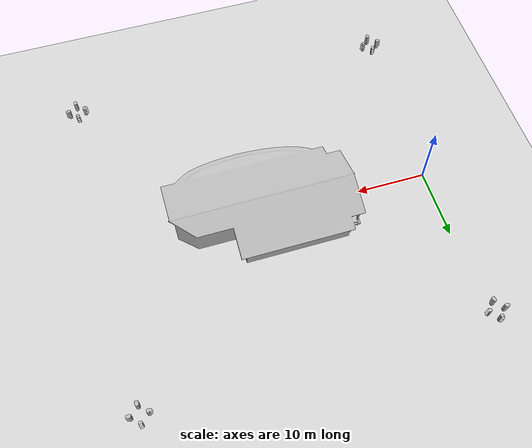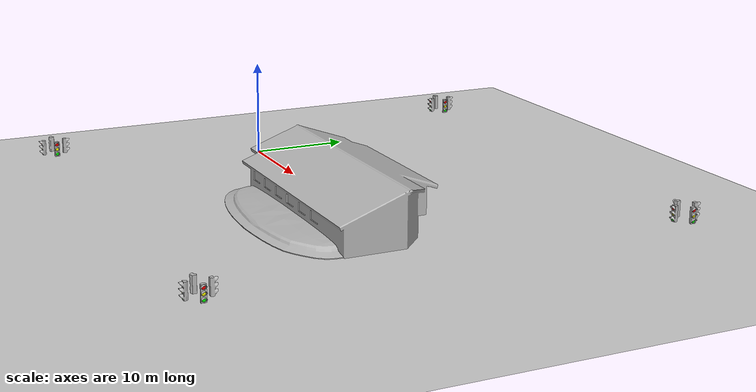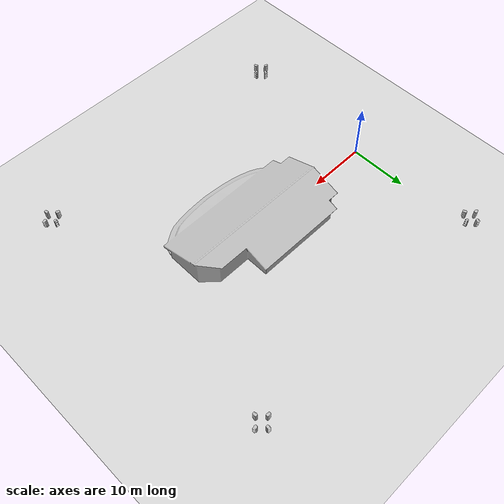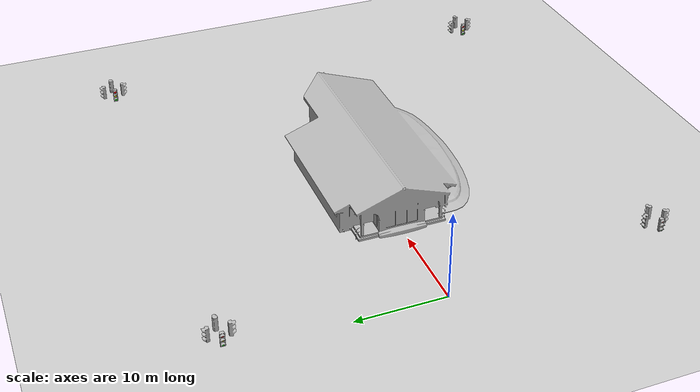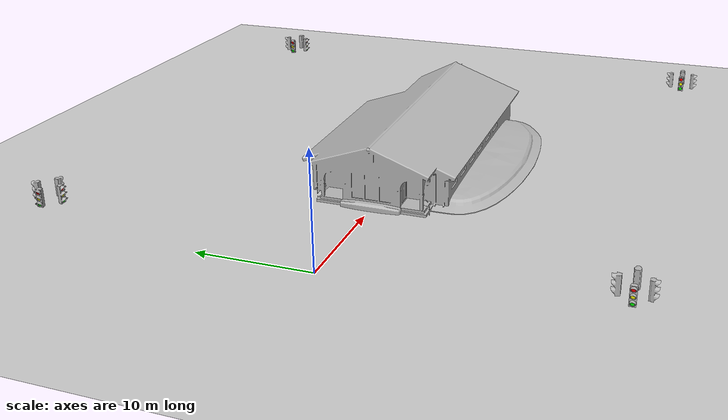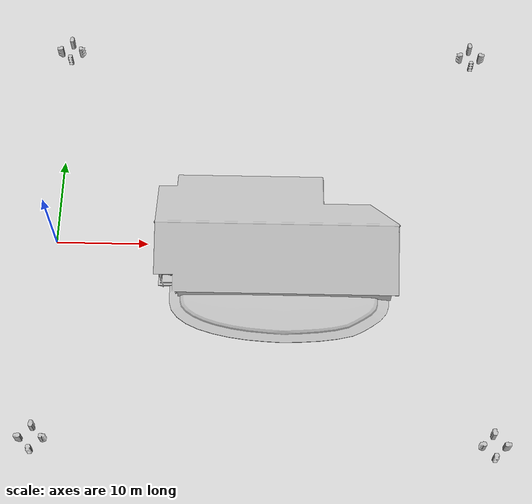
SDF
<sdf version="1.10">
 <world name="car-world">
  <scene><ambient>0.3 0.3 0.3 0</ambient><background>0.1 0.2 0.3 0</background><grid>false</grid></scene>
  <physics name="1ms" type="ignored">
   <max_step_size>0.001</max_step_size>
   <real_time_factor>1.0</real_time_factor>
  </physics>
  <plugin filename="gz-sim-physics-system" name="gz::sim::systems::Physics"/>
  <plugin filename="gz-sim-user-commands-system" name="gz::sim::systems::UserCommands"/>
  <plugin filename="gz-sim-scene-broadcaster-system" name="gz::sim::systems::SceneBroadcaster"/>
  <plugin filename="gz-sim-sensors-system" name="gz::sim::systems::Sensors">
   <render_engine>ogre2</render_engine>
  </plugin>
  <light type="directional" name="sun">
   <pose>40 0 10 0 0 0</pose>
   <diffuse>0.8 0.8 0.8 1</diffuse>
   <specular>0.2 0.2 0.2 1</specular>
   <attenuation>
    <range>1000</range>
    <constant>0.9</constant>
    <linear>0.01</linear>
    <quadratic>0.001</quadratic>
   </attenuation>
   <direction>-0.5 0.1 -0.9</direction>
  </light>
  <include><uri>model://models/stoplights</uri></include>
  <include><uri>model://models/ground</uri></include>
  <include><pose>25 0 0 0 0 0</pose><uri>model://models/office</uri></include>
 </world>
</sdf>

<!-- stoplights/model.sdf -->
<sdf version="1.6">
  <model name="stoplights">
    <static>true</static>

    <!-- stoplights on the intersection of the north street and the west street.-->

    <include>
      <name>light_nw_n</name>
      <pose>47 23 4 0 0 1.57</pose>
      <uri>model://models/stoplights/stoplight_a</uri>
    </include>

    <include>
      <name>light_nw_s</name>
      <pose>45 23 4 0 0 -1.57</pose>
      <uri>model://models/stoplights/stoplight_a</uri>
    </include>

    <include>
      <name>light_nw_w</name>
      <pose>46 24 4 0 0 3.14</pose>
      <uri>model://models/stoplights/stoplight_b</uri>
    </include>

    <include>
      <name>light_nw_e</name>
      <pose>46 22 4 0 0 0</pose>
      <uri>model://models/stoplights/stoplight_b</uri>
    </include>

    <!-- stoplights on the intersection of the north street and the east street.-->

    <include>
      <name>light_ne_n</name>
      <pose>47 -23 4 0 0 1.57</pose>
      <uri>model://models/stoplights/stoplight_b</uri>
    </include>

    <include>
      <name>light_ne_s</name>
      <pose>45 -23 4 0 0 -1.57</pose>
      <uri>model://models/stoplights/stoplight_b</uri>
    </include>

    <include>
      <name>light_ne_w</name>
      <pose>46 -22 4 0 0 3.14</pose>
      <uri>model://models/stoplights/stoplight_a</uri>
    </include>

    <include>
      <name>light_ne_e</name>
      <pose>46 -24 4 0 0 0</pose>
      <uri>model://models/stoplights/stoplight_a</uri>
    </include>

    <!-- stoplights on the intersection of the south street and the west street.-->

    <include>
      <name>light_sw_n</name>
      <pose>1 23 4 0 0 1.57</pose>
      <uri>model://models/stoplights/stoplight_b</uri>
    </include>

    <include>
      <name>light_sw_s</name>
      <pose>-1 23 4 0 0 -1.57</pose>
      <uri>model://models/stoplights/stoplight_b</uri>
    </include>

    <include>
      <name>light_sw_w</name>
      <pose>0 24 4 0 0 3.14</pose>
      <uri>model://models/stoplights/stoplight_a</uri>
    </include>

    <include>
      <name>light_sw_e</name>
      <pose>0 22 4 0 0 0</pose>
      <uri>model://models/stoplights/stoplight_a</uri>
    </include>

    <!-- stoplights on the intersection of the south street and the east street.-->

    <include>
      <name>light_se_n</name>
      <pose>1 -23 4 0 0 1.57</pose>
      <uri>model://models/stoplights/stoplight_a</uri>
    </include>

    <include>
      <name>light_se_s</name>
      <pose>-1 -23 4 0 0 -1.57</pose>
      <uri>model://models/stoplights/stoplight_a</uri>
    </include>

    <include>
      <name>light_se_w</name>
      <pose>0 -22 4 0 0 3.14</pose>
      <uri>model://models/stoplights/stoplight_b</uri>
    </include>

    <include>
      <name>light_se_e</name>
      <pose>0 -24 4 0 0 0</pose>
      <uri>model://models/stoplights/stoplight_b</uri>
    </include>

  </model>

</sdf>

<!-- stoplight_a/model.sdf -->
<sdf version="1.6">
  <model name="stoplight_a">

    <static>true</static>

    <link name="link">

      <collision name="collision">
        <geometry>
          <mesh>
            <uri>model://models/stoplights/stoplight_a/meshes/stoplight.obj</uri>
            <scale>0.02 0.02 0.02</scale>
          </mesh>
        </geometry>
      </collision>

      <visual name="frame">
        <geometry>
          <mesh>
            <uri>model://models/stoplights/stoplight_a/meshes/stoplight.obj</uri>
            <scale>0.02 0.02 0.02</scale>
          </mesh>
        </geometry>
      </visual>

      <visual name="red_a">
        <pose>-0.002246 -0.164502 -0.295028 0 0 0</pose>
        <geometry>
          <sphere>
            <radius>0.2024</radius>
          </sphere>
        </geometry>
        <material>
          <script>
            <uri>model://models/stoplights/stoplight_a/materials/scripts/</uri>
            <uri>model://models/stoplights/stoplight_a/materials/textures/</uri>
            <name>StopLight/Light</name>
          </script>
          <ambient>1 0 0 1</ambient>
          <specular>1 0 0 1</specular>
          <!-- Turn a light on by uncommenting emissive -->
        </material>
      </visual>

      <visual name="yellow_a">
        <pose>-0.002246 -0.164502 -0.804 0 0 0</pose>
        <geometry>
          <sphere>
            <radius>0.2024</radius>
          </sphere>
        </geometry>
        <material>
          <script>
            <uri>model://models/stoplights/stoplight_a/materials/scripts/</uri>
            <uri>model://models/stoplights/stoplight_a/materials/textures/</uri>
            <name>StopLight/Light</name>
          </script>
          <ambient>1 1 0 1</ambient>
          <specular>1 1 0 1</specular>
        </material>
      </visual>

      <visual name="green_a">
        <pose>-0.002246 -0.164502 -1.31 0 0 0</pose>
        <geometry>
          <sphere>
            <radius>0.2024</radius>
          </sphere>
        </geometry>
        <material>
          <script>
            <uri>model://models/stoplights/stoplight_a/materials/scripts/</uri>
            <uri>model://models/stoplights/stoplight_a/materials/textures/</uri>
            <name>StopLight/Light</name>
          </script>
          <ambient>0 1 0 1</ambient>
          <specular>0 1 0 1</specular>
        </material>
      </visual>

    </link>
  </model>
</sdf>

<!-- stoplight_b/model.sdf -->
<sdf version="1.6">
  <model name="stoplight_b">

    <static>true</static>

    <link name="link">

      <collision name="collision">
        <geometry>
          <mesh>
            <uri>model://models/stoplights/stoplight_b/meshes/stoplight.obj</uri>
            <scale>0.02 0.02 0.02</scale>
          </mesh>
        </geometry>
      </collision>

      <visual name="frame">
        <geometry>
          <mesh>
            <uri>model://models/stoplights/stoplight_b/meshes/stoplight.obj</uri>
            <scale>0.02 0.02 0.02</scale>
          </mesh>
        </geometry>
      </visual>

      <visual name="red_b">
        <pose>-0.002246 -0.164502 -0.295028 0 0 0</pose>
        <geometry>
          <sphere>
            <radius>0.2024</radius>
          </sphere>
        </geometry>
        <material>
          <script>
            <uri>model://models/stoplights/stoplight_b/materials/scripts/</uri>
            <uri>model://models/stoplights/stoplight_b/materials/textures/</uri>
            <name>StopLight/Light</name>
          </script>
          <ambient>1 0 0 1</ambient>
          <specular>1 0 0 1</specular>
          <!-- Turn a light on by uncommenting emissive -->
        </material>
      </visual>

      <visual name="yellow_b">
        <pose>-0.002246 -0.164502 -0.804 0 0 0</pose>
        <geometry>
          <sphere>
            <radius>0.2024</radius>
          </sphere>
        </geometry>
        <material>
          <script>
            <uri>model://models/stoplights/stoplight_b/materials/scripts/</uri>
            <uri>model://models/stoplights/stoplight_b/materials/textures/</uri>
            <name>StopLight/Light</name>
          </script>
          <ambient>1 1 0 1</ambient>
          <specular>1 1 0 1</specular>
        </material>
      </visual>

      <visual name="green_b">
        <pose>-0.002246 -0.164502 -1.31 0 0 0</pose>
        <geometry>
          <sphere>
            <radius>0.2024</radius>
          </sphere>
        </geometry>
        <material>
          <script>
            <uri>model://models/stoplights/stoplight_b/materials/scripts/</uri>
            <uri>model://models/stoplights/stoplight_b/materials/textures/</uri>
            <name>StopLight/Light</name>
          </script>
          <ambient>0 1 0 1</ambient>
          <specular>0 1 0 1</specular>
        </material>
      </visual>

    </link>
  </model>
</sdf>

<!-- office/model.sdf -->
<sdf version="1.6">
  <model name="office">
    <static>true</static>
    <link name="link">
      <collision name="collision">
        <geometry>
          <mesh>
            <uri>model://models/office/meshes/osrf_first_office.dae</uri>
          </mesh>
        </geometry>
      </collision>
      <visual name="visual">
        <geometry>
          <mesh>
            <uri>model://models/office/meshes/osrf_first_office.dae</uri>
          </mesh>
        </geometry>
      </visual>
    </link>
  </model>
</sdf>
